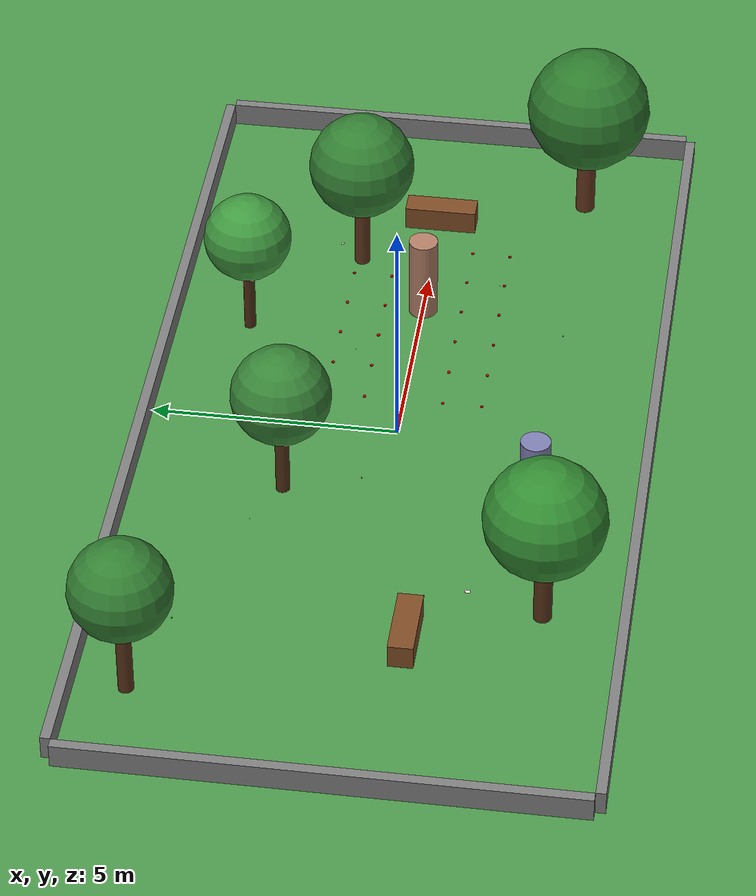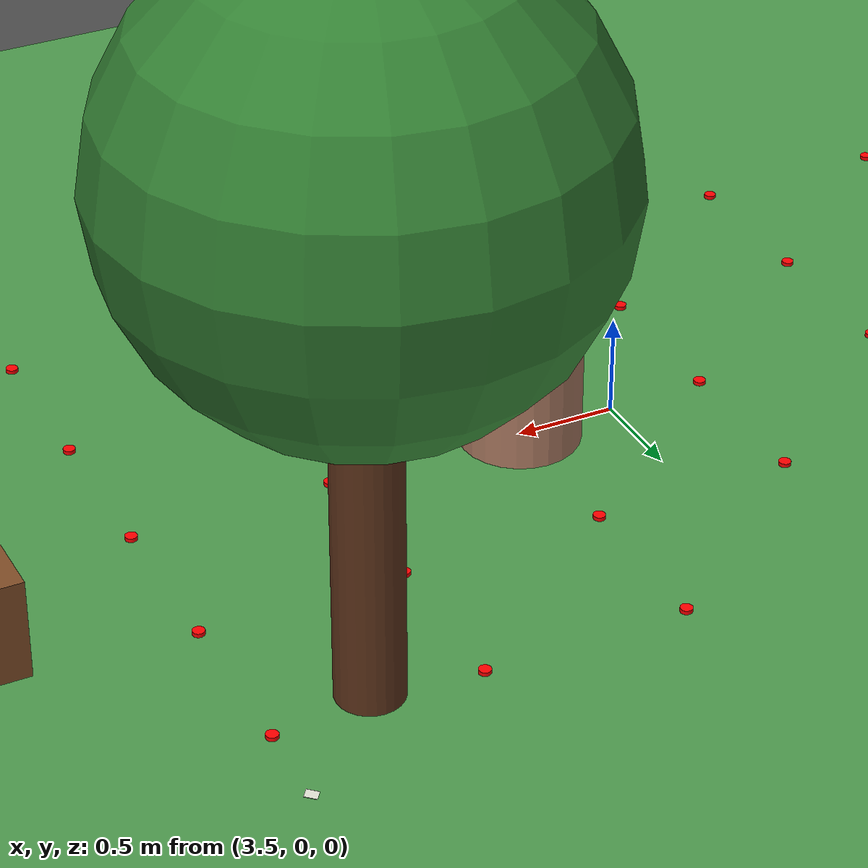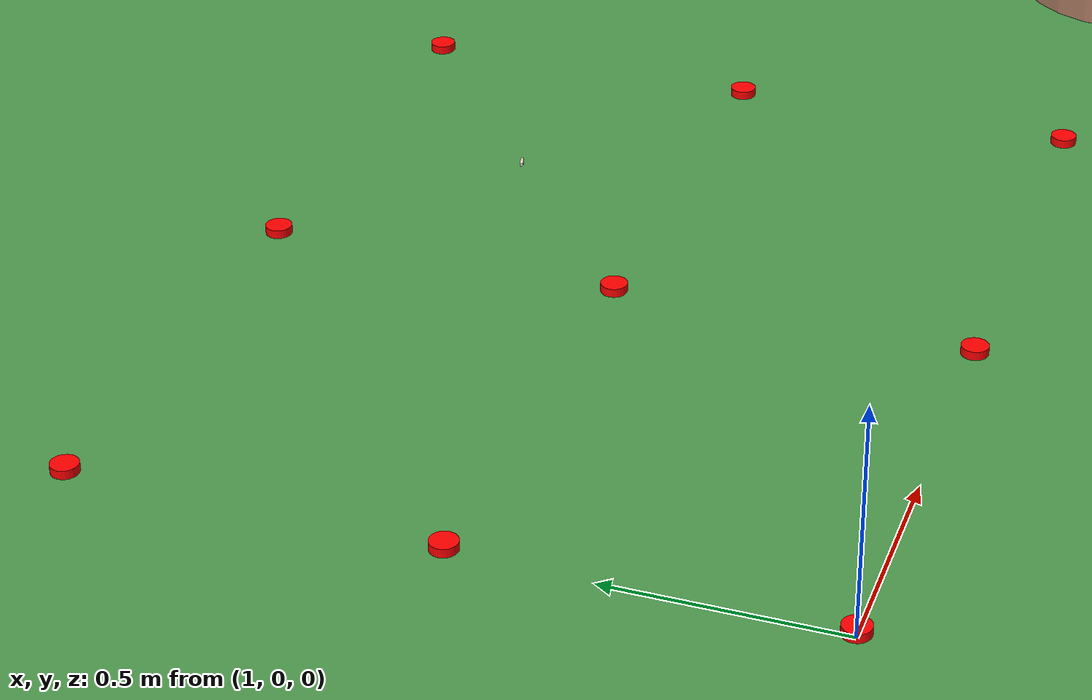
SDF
<?xml version="1.0" ?>
<sdf version="1.6">
  <world name="med_cim">
    <!-- Physics - slower for WSL2 stability -->
    <physics type="ode">
      <max_step_size>0.001</max_step_size>
      <real_time_factor>0.5</real_time_factor>
      <real_time_update_rate>1000</real_time_update_rate>
    </physics>

    <!-- Lighting -->
    <include>
      <uri>model://sun</uri>
    </include>

    <!-- Ground plane with grass texture -->
    <model name="ground_plane">
      <static>true</static>
      <link name="link">
        <collision name="collision">
          <geometry>
            <plane>
              <normal>0 0 1</normal>
              <size>20 10</size>
            </plane>
          </geometry>
          <surface>
            <friction>
              <ode>
                <mu>100</mu>
                <mu2>50</mu2>
              </ode>
            </friction>
          </surface>
        </collision>
        <visual name="visual">
          <cast_shadows>false</cast_shadows>
          <geometry>
            <plane>
              <normal>0 0 1</normal>
              <size>20 10</size>
            </plane>
          </geometry>
          <material>
            <ambient>0.2 0.5 0.2 1</ambient>
            <diffuse>0.3 0.6 0.3 1</diffuse>
            <specular>0.1 0.1 0.1 1</specular>
          </material>
        </visual>
      </link>
    </model>

    <!-- Boundary walls -->
    <model name="wall_north">
      <static>true</static>
      <pose>0 5.1 0.25 0 0 0</pose>
      <link name="link">
        <collision name="collision">
          <geometry>
            <box><size>20 0.2 0.5</size></box>
          </geometry>
        </collision>
        <visual name="visual">
          <geometry>
            <box><size>20 0.2 0.5</size></box>
          </geometry>
          <material>
            <ambient>0.5 0.5 0.5 1</ambient>
          </material>
        </visual>
      </link>
    </model>

    <model name="wall_south">
      <static>true</static>
      <pose>0 -5.1 0.25 0 0 0</pose>
      <link name="link">
        <collision name="collision">
          <geometry>
            <box><size>20 0.2 0.5</size></box>
          </geometry>
        </collision>
        <visual name="visual">
          <geometry>
            <box><size>20 0.2 0.5</size></box>
          </geometry>
          <material>
            <ambient>0.5 0.5 0.5 1</ambient>
          </material>
        </visual>
      </link>
    </model>

    <model name="wall_east">
      <static>true</static>
      <pose>10.1 0 0.25 0 0 0</pose>
      <link name="link">
        <collision name="collision">
          <geometry>
            <box><size>0.2 10 0.5</size></box>
          </geometry>
        </collision>
        <visual name="visual">
          <geometry>
            <box><size>0.2 10 0.5</size></box>
          </geometry>
          <material>
            <ambient>0.5 0.5 0.5 1</ambient>
          </material>
        </visual>
      </link>
    </model>

    <model name="wall_west">
      <static>true</static>
      <pose>-10.1 0 0.25 0 0 0</pose>
      <link name="link">
        <collision name="collision">
          <geometry>
            <box><size>0.2 10 0.5</size></box>
          </geometry>
        </collision>
        <visual name="visual">
          <geometry>
            <box><size>0.2 10 0.5</size></box>
          </geometry>
          <material>
            <ambient>0.5 0.5 0.5 1</ambient>
          </material>
        </visual>
      </link>
    </model>

    <!-- Litter objects: Cigarette butts -->
    <model name="cigarette_1">
      <static>true</static>
      <pose>2.5 1.2 0.005 0 1.57 0.3</pose>
      <link name="link">
        <collision name="collision">
          <geometry>
            <cylinder><radius>0.004</radius><length>0.03</length></cylinder>
          </geometry>
        </collision>
        <visual name="visual">
          <geometry>
            <cylinder><radius>0.004</radius><length>0.03</length></cylinder>
          </geometry>
          <material>
            <ambient>0.9 0.85 0.7 1</ambient>
            <diffuse>0.95 0.9 0.8 1</diffuse>
          </material>
        </visual>
      </link>
    </model>

    <model name="cigarette_2">
      <static>true</static>
      <pose>-3.0 2.5 0.005 0 1.57 1.2</pose>
      <link name="link">
        <collision name="collision">
          <geometry>
            <cylinder><radius>0.004</radius><length>0.03</length></cylinder>
          </geometry>
        </collision>
        <visual name="visual">
          <geometry>
            <cylinder><radius>0.004</radius><length>0.03</length></cylinder>
          </geometry>
          <material>
            <ambient>0.9 0.85 0.7 1</ambient>
          </material>
        </visual>
      </link>
    </model>

    <model name="cigarette_3">
      <static>true</static>
      <pose>5.0 -1.5 0.005 0 1.57 2.1</pose>
      <link name="link">
        <collision name="collision">
          <geometry>
            <cylinder><radius>0.004</radius><length>0.03</length></cylinder>
          </geometry>
        </collision>
        <visual name="visual">
          <geometry>
            <cylinder><radius>0.004</radius><length>0.03</length></cylinder>
          </geometry>
          <material>
            <ambient>0.9 0.85 0.7 1</ambient>
          </material>
        </visual>
      </link>
    </model>

    <!-- Litter objects: Paper pieces -->
    <model name="paper_1">
      <static>true</static>
      <pose>1.0 3.0 0.002 0 0 0.5</pose>
      <link name="link">
        <collision name="collision">
          <geometry>
            <box><size>0.08 0.06 0.002</size></box>
          </geometry>
        </collision>
        <visual name="visual">
          <geometry>
            <box><size>0.08 0.06 0.002</size></box>
          </geometry>
          <material>
            <ambient>0.95 0.95 0.95 1</ambient>
            <diffuse>1.0 1.0 1.0 1</diffuse>
          </material>
        </visual>
      </link>
    </model>

    <model name="paper_2">
      <static>true</static>
      <pose>-4.5 -2.0 0.002 0 0 1.8</pose>
      <link name="link">
        <collision name="collision">
          <geometry>
            <box><size>0.1 0.07 0.002</size></box>
          </geometry>
        </collision>
        <visual name="visual">
          <geometry>
            <box><size>0.1 0.07 0.002</size></box>
          </geometry>
          <material>
            <ambient>0.95 0.95 0.9 1</ambient>
          </material>
        </visual>
      </link>
    </model>

    <model name="paper_3">
      <static>true</static>
      <pose>6.0 2.0 0.002 0 0.1 2.5</pose>
      <link name="link">
        <collision name="collision">
          <geometry>
            <box><size>0.06 0.05 0.002</size></box>
          </geometry>
        </collision>
        <visual name="visual">
          <geometry>
            <box><size>0.06 0.05 0.002</size></box>
          </geometry>
          <material>
            <ambient>0.9 0.9 0.85 1</ambient>
          </material>
        </visual>
      </link>
    </model>

    <!-- Litter objects: Bottle caps -->
    <model name="bottle_cap_1">
      <static>true</static>
      <pose>-1.5 0.5 0.008 0 0 0</pose>
      <link name="link">
        <collision name="collision">
          <geometry>
            <cylinder><radius>0.015</radius><length>0.008</length></cylinder>
          </geometry>
        </collision>
        <visual name="visual">
          <geometry>
            <cylinder><radius>0.015</radius><length>0.008</length></cylinder>
          </geometry>
          <material>
            <ambient>0.8 0.1 0.1 1</ambient>
            <diffuse>1.0 0.2 0.2 1</diffuse>
          </material>
        </visual>
      </link>
    </model>

    <model name="bottle_cap_2">
      <static>true</static>
      <pose>3.5 -3.0 0.008 0 0 0</pose>
      <link name="link">
        <collision name="collision">
          <geometry>
            <cylinder><radius>0.015</radius><length>0.008</length></cylinder>
          </geometry>
        </collision>
        <visual name="visual">
          <geometry>
            <cylinder><radius>0.015</radius><length>0.008</length></cylinder>
          </geometry>
          <material>
            <ambient>0.1 0.1 0.8 1</ambient>
            <diffuse>0.2 0.2 1.0 1</diffuse>
          </material>
        </visual>
      </link>
    </model>

    <model name="bottle_cap_3">
      <static>true</static>
      <pose>-6.0 3.5 0.008 0 0 0</pose>
      <link name="link">
        <collision name="collision">
          <geometry>
            <cylinder><radius>0.015</radius><length>0.008</length></cylinder>
          </geometry>
        </collision>
        <visual name="visual">
          <geometry>
            <cylinder><radius>0.015</radius><length>0.008</length></cylinder>
          </geometry>
          <material>
            <ambient>0.1 0.6 0.1 1</ambient>
            <diffuse>0.2 0.8 0.2 1</diffuse>
          </material>
        </visual>
      </link>
    </model>

    <!-- Static human obstacles -->
    <model name="human_1">
      <static>true</static>
      <pose>4.0 0 0.9 0 0 0</pose>
      <link name="link">
        <collision name="collision">
          <geometry>
            <cylinder><radius>0.3</radius><length>1.8</length></cylinder>
          </geometry>
        </collision>
        <visual name="visual">
          <geometry>
            <cylinder><radius>0.3</radius><length>1.8</length></cylinder>
          </geometry>
          <material>
            <ambient>0.6 0.4 0.3 1</ambient>
            <diffuse>0.7 0.5 0.4 1</diffuse>
          </material>
        </visual>
      </link>
    </model>

    <model name="human_2">
      <static>true</static>
      <pose>-2.0 -3.0 0.9 0 0 0</pose>
      <link name="link">
        <collision name="collision">
          <geometry>
            <cylinder><radius>0.3</radius><length>1.8</length></cylinder>
          </geometry>
        </collision>
        <visual name="visual">
          <geometry>
            <cylinder><radius>0.3</radius><length>1.8</length></cylinder>
          </geometry>
          <material>
            <ambient>0.4 0.4 0.6 1</ambient>
            <diffuse>0.5 0.5 0.7 1</diffuse>
          </material>
        </visual>
      </link>
    </model>

    <!-- Bench -->
    <model name="bench_1">
      <static>true</static>
      <pose>7.0 0 0.25 0 0 1.57</pose>
      <link name="link">
        <collision name="collision">
          <geometry>
            <box><size>1.5 0.5 0.5</size></box>
          </geometry>
        </collision>
        <visual name="visual">
          <geometry>
            <box><size>1.5 0.5 0.5</size></box>
          </geometry>
          <material>
            <ambient>0.4 0.25 0.1 1</ambient>
            <diffuse>0.5 0.3 0.15 1</diffuse>
          </material>
        </visual>
      </link>
    </model>

    <!-- Trees -->
    <model name="tree_1">
      <static>true</static>
      <pose>-8.0 4.0 0 0 0 0</pose>
      <link name="trunk">
        <pose>0 0 1.0 0 0 0</pose>
        <collision name="collision">
          <geometry>
            <cylinder><radius>0.15</radius><length>2.0</length></cylinder>
          </geometry>
        </collision>
        <visual name="visual">
          <geometry>
            <cylinder><radius>0.15</radius><length>2.0</length></cylinder>
          </geometry>
          <material>
            <ambient>0.35 0.2 0.1 1</ambient>
          </material>
        </visual>
      </link>
      <link name="foliage">
        <pose>0 0 2.5 0 0 0</pose>
        <visual name="visual">
          <geometry>
            <sphere><radius>1.0</radius></sphere>
          </geometry>
          <material>
            <ambient>0.1 0.4 0.1 1</ambient>
            <diffuse>0.2 0.5 0.2 1</diffuse>
          </material>
        </visual>
      </link>
    </model>

    <model name="tree_2">
      <static>true</static>
      <pose>-5.0 -3.5 0 0 0 0</pose>
      <link name="trunk">
        <pose>0 0 1.0 0 0 0</pose>
        <collision name="collision">
          <geometry>
            <cylinder><radius>0.18</radius><length>2.0</length></cylinder>
          </geometry>
        </collision>
        <visual name="visual">
          <geometry>
            <cylinder><radius>0.18</radius><length>2.0</length></cylinder>
          </geometry>
          <material>
            <ambient>0.35 0.2 0.1 1</ambient>
          </material>
        </visual>
      </link>
      <link name="foliage">
        <pose>0 0 2.5 0 0 0</pose>
        <visual name="visual">
          <geometry>
            <sphere><radius>1.2</radius></sphere>
          </geometry>
          <material>
            <ambient>0.1 0.45 0.1 1</ambient>
            <diffuse>0.2 0.55 0.2 1</diffuse>
          </material>
        </visual>
      </link>
    </model>

    <model name="tree_3">
      <static>true</static>
      <pose>3.0 3.5 0 0 0 0</pose>
      <link name="trunk">
        <pose>0 0 1.0 0 0 0</pose>
        <collision name="collision">
          <geometry>
            <cylinder><radius>0.12</radius><length>2.0</length></cylinder>
          </geometry>
        </collision>
        <visual name="visual">
          <geometry>
            <cylinder><radius>0.12</radius><length>2.0</length></cylinder>
          </geometry>
          <material>
            <ambient>0.3 0.18 0.08 1</ambient>
          </material>
        </visual>
      </link>
      <link name="foliage">
        <pose>0 0 2.3 0 0 0</pose>
        <visual name="visual">
          <geometry>
            <sphere><radius>0.9</radius></sphere>
          </geometry>
          <material>
            <ambient>0.15 0.5 0.15 1</ambient>
            <diffuse>0.25 0.6 0.25 1</diffuse>
          </material>
        </visual>
      </link>
    </model>

    <model name="tree_4">
      <static>true</static>
      <pose>8.0 -3.0 0 0 0 0</pose>
      <link name="trunk">
        <pose>0 0 1.0 0 0 0</pose>
        <collision name="collision">
          <geometry>
            <cylinder><radius>0.2</radius><length>2.0</length></cylinder>
          </geometry>
        </collision>
        <visual name="visual">
          <geometry>
            <cylinder><radius>0.2</radius><length>2.0</length></cylinder>
          </geometry>
          <material>
            <ambient>0.4 0.22 0.12 1</ambient>
          </material>
        </visual>
      </link>
      <link name="foliage">
        <pose>0 0 2.6 0 0 0</pose>
        <visual name="visual">
          <geometry>
            <sphere><radius>1.3</radius></sphere>
          </geometry>
          <material>
            <ambient>0.08 0.38 0.08 1</ambient>
            <diffuse>0.18 0.48 0.18 1</diffuse>
          </material>
        </visual>
      </link>
    </model>

    <model name="tree_5">
      <static>true</static>
      <pose>-2.0 2.0 0 0 0 0</pose>
      <link name="trunk">
        <pose>0 0 1.0 0 0 0</pose>
        <collision name="collision">
          <geometry>
            <cylinder><radius>0.14</radius><length>2.0</length></cylinder>
          </geometry>
        </collision>
        <visual name="visual">
          <geometry>
            <cylinder><radius>0.14</radius><length>2.0</length></cylinder>
          </geometry>
          <material>
            <ambient>0.32 0.19 0.09 1</ambient>
          </material>
        </visual>
      </link>
      <link name="foliage">
        <pose>0 0 2.4 0 0 0</pose>
        <visual name="visual">
          <geometry>
            <sphere><radius>1.0</radius></sphere>
          </geometry>
          <material>
            <ambient>0.12 0.42 0.12 1</ambient>
            <diffuse>0.22 0.52 0.22 1</diffuse>
          </material>
        </visual>
      </link>
    </model>

    <model name="tree_6">
      <static>true</static>
      <pose>5.5 1.5 0 0 0 0</pose>
      <link name="trunk">
        <pose>0 0 1.0 0 0 0</pose>
        <collision name="collision">
          <geometry>
            <cylinder><radius>0.16</radius><length>2.0</length></cylinder>
          </geometry>
        </collision>
        <visual name="visual">
          <geometry>
            <cylinder><radius>0.16</radius><length>2.0</length></cylinder>
          </geometry>
          <material>
            <ambient>0.38 0.21 0.11 1</ambient>
          </material>
        </visual>
      </link>
      <link name="foliage">
        <pose>0 0 2.5 0 0 0</pose>
        <visual name="visual">
          <geometry>
            <sphere><radius>1.1</radius></sphere>
          </geometry>
          <material>
            <ambient>0.1 0.4 0.1 1</ambient>
            <diffuse>0.2 0.5 0.2 1</diffuse>
          </material>
        </visual>
      </link>
    </model>

    <!-- Second bench -->
    <model name="bench_2">
      <static>true</static>
      <pose>-6.0 -1.0 0.25 0 0 0</pose>
      <link name="link">
        <collision name="collision">
          <geometry>
            <box><size>1.5 0.5 0.5</size></box>
          </geometry>
        </collision>
        <visual name="visual">
          <geometry>
            <box><size>1.5 0.5 0.5</size></box>
          </geometry>
          <material>
            <ambient>0.4 0.25 0.1 1</ambient>
            <diffuse>0.5 0.3 0.15 1</diffuse>
          </material>
        </visual>
      </link>
    </model>

    <!-- ========== LITTER OBJECTS (30 BOTTLE CAPS - UNIFORM) ========== -->
    <!-- Grid: 5 rows x 6 columns, evenly distributed -->
    <!-- Coverage area: x=[0.5, 6.5], y=[-2.0, 2.0] -->

    <!-- Row 1 (y = -1.6) -->
    <model name="litter_01">
      <static>true</static>
      <pose>1.0 -1.6 0.02 0 0 0</pose>
      <link name="link">
        <visual name="visual">
          <geometry><cylinder><radius>0.03</radius><length>0.02</length></cylinder></geometry>
          <material>
            <ambient>0.9 0.0 0.0 1</ambient>
            <diffuse>1.0 0.0 0.0 1</diffuse>
            <specular>0.5 0.0 0.0 1</specular>
          </material>
        </visual>
        <collision name="collision">
          <geometry><cylinder><radius>0.03</radius><length>0.02</length></cylinder></geometry>
        </collision>
      </link>
    </model>

    <model name="litter_02">
      <static>true</static>
      <pose>2.0 -1.6 0.02 0 0 0</pose>
      <link name="link">
        <visual name="visual">
          <geometry><cylinder><radius>0.03</radius><length>0.02</length></cylinder></geometry>
          <material>
            <ambient>0.9 0.0 0.0 1</ambient>
            <diffuse>1.0 0.0 0.0 1</diffuse>
            <specular>0.5 0.0 0.0 1</specular>
          </material>
        </visual>
        <collision name="collision">
          <geometry><cylinder><radius>0.03</radius><length>0.02</length></cylinder></geometry>
        </collision>
      </link>
    </model>

    <model name="litter_03">
      <static>true</static>
      <pose>3.0 -1.6 0.02 0 0 0</pose>
      <link name="link">
        <visual name="visual">
          <geometry><cylinder><radius>0.03</radius><length>0.02</length></cylinder></geometry>
          <material>
            <ambient>0.9 0.0 0.0 1</ambient>
            <diffuse>1.0 0.0 0.0 1</diffuse>
            <specular>0.5 0.0 0.0 1</specular>
          </material>
        </visual>
        <collision name="collision">
          <geometry><cylinder><radius>0.03</radius><length>0.02</length></cylinder></geometry>
        </collision>
      </link>
    </model>

    <model name="litter_04">
      <static>true</static>
      <pose>4.0 -1.6 0.02 0 0 0</pose>
      <link name="link">
        <visual name="visual">
          <geometry><cylinder><radius>0.03</radius><length>0.02</length></cylinder></geometry>
          <material>
            <ambient>0.9 0.0 0.0 1</ambient>
            <diffuse>1.0 0.0 0.0 1</diffuse>
            <specular>0.5 0.0 0.0 1</specular>
          </material>
        </visual>
        <collision name="collision">
          <geometry><cylinder><radius>0.03</radius><length>0.02</length></cylinder></geometry>
        </collision>
      </link>
    </model>

    <model name="litter_05">
      <static>true</static>
      <pose>5.0 -1.6 0.02 0 0 0</pose>
      <link name="link">
        <visual name="visual">
          <geometry><cylinder><radius>0.03</radius><length>0.02</length></cylinder></geometry>
          <material>
            <ambient>0.9 0.0 0.0 1</ambient>
            <diffuse>1.0 0.0 0.0 1</diffuse>
            <specular>0.5 0.0 0.0 1</specular>
          </material>
        </visual>
        <collision name="collision">
          <geometry><cylinder><radius>0.03</radius><length>0.02</length></cylinder></geometry>
        </collision>
      </link>
    </model>

    <model name="litter_06">
      <static>true</static>
      <pose>6.0 -1.6 0.02 0 0 0</pose>
      <link name="link">
        <visual name="visual">
          <geometry><cylinder><radius>0.03</radius><length>0.02</length></cylinder></geometry>
          <material>
            <ambient>0.9 0.0 0.0 1</ambient>
            <diffuse>1.0 0.0 0.0 1</diffuse>
            <specular>0.5 0.0 0.0 1</specular>
          </material>
        </visual>
        <collision name="collision">
          <geometry><cylinder><radius>0.03</radius><length>0.02</length></cylinder></geometry>
        </collision>
      </link>
    </model>

    <!-- Row 2 (y = -0.8) -->
    <model name="litter_07">
      <static>true</static>
      <pose>1.0 -0.8 0.02 0 0 0</pose>
      <link name="link">
        <visual name="visual">
          <geometry><cylinder><radius>0.03</radius><length>0.02</length></cylinder></geometry>
          <material>
            <ambient>0.9 0.0 0.0 1</ambient>
            <diffuse>1.0 0.0 0.0 1</diffuse>
            <specular>0.5 0.0 0.0 1</specular>
          </material>
        </visual>
        <collision name="collision">
          <geometry><cylinder><radius>0.03</radius><length>0.02</length></cylinder></geometry>
        </collision>
      </link>
    </model>

    <model name="litter_08">
      <static>true</static>
      <pose>2.0 -0.8 0.02 0 0 0</pose>
      <link name="link">
        <visual name="visual">
          <geometry><cylinder><radius>0.03</radius><length>0.02</length></cylinder></geometry>
          <material>
            <ambient>0.9 0.0 0.0 1</ambient>
            <diffuse>1.0 0.0 0.0 1</diffuse>
            <specular>0.5 0.0 0.0 1</specular>
          </material>
        </visual>
        <collision name="collision">
          <geometry><cylinder><radius>0.03</radius><length>0.02</length></cylinder></geometry>
        </collision>
      </link>
    </model>

    <model name="litter_09">
      <static>true</static>
      <pose>3.0 -0.8 0.02 0 0 0</pose>
      <link name="link">
        <visual name="visual">
          <geometry><cylinder><radius>0.03</radius><length>0.02</length></cylinder></geometry>
          <material>
            <ambient>0.9 0.0 0.0 1</ambient>
            <diffuse>1.0 0.0 0.0 1</diffuse>
            <specular>0.5 0.0 0.0 1</specular>
          </material>
        </visual>
        <collision name="collision">
          <geometry><cylinder><radius>0.03</radius><length>0.02</length></cylinder></geometry>
        </collision>
      </link>
    </model>

    <model name="litter_10">
      <static>true</static>
      <pose>4.0 -0.8 0.02 0 0 0</pose>
      <link name="link">
        <visual name="visual">
          <geometry><cylinder><radius>0.03</radius><length>0.02</length></cylinder></geometry>
          <material>
            <ambient>0.9 0.0 0.0 1</ambient>
            <diffuse>1.0 0.0 0.0 1</diffuse>
            <specular>0.5 0.0 0.0 1</specular>
          </material>
        </visual>
        <collision name="collision">
          <geometry><cylinder><radius>0.03</radius><length>0.02</length></cylinder></geometry>
        </collision>
      </link>
    </model>

    <model name="litter_11">
      <static>true</static>
      <pose>5.0 -0.8 0.02 0 0 0</pose>
      <link name="link">
        <visual name="visual">
          <geometry><cylinder><radius>0.03</radius><length>0.02</length></cylinder></geometry>
          <material>
            <ambient>0.9 0.0 0.0 1</ambient>
            <diffuse>1.0 0.0 0.0 1</diffuse>
            <specular>0.5 0.0 0.0 1</specular>
          </material>
        </visual>
        <collision name="collision">
          <geometry><cylinder><radius>0.03</radius><length>0.02</length></cylinder></geometry>
        </collision>
      </link>
    </model>

    <model name="litter_12">
      <static>true</static>
      <pose>6.0 -0.8 0.02 0 0 0</pose>
      <link name="link">
        <visual name="visual">
          <geometry><cylinder><radius>0.03</radius><length>0.02</length></cylinder></geometry>
          <material>
            <ambient>0.9 0.0 0.0 1</ambient>
            <diffuse>1.0 0.0 0.0 1</diffuse>
            <specular>0.5 0.0 0.0 1</specular>
          </material>
        </visual>
        <collision name="collision">
          <geometry><cylinder><radius>0.03</radius><length>0.02</length></cylinder></geometry>
        </collision>
      </link>
    </model>

    <!-- Row 3 (y = 0.0) -->
    <model name="litter_13">
      <static>true</static>
      <pose>1.0 0.0 0.02 0 0 0</pose>
      <link name="link">
        <visual name="visual">
          <geometry><cylinder><radius>0.03</radius><length>0.02</length></cylinder></geometry>
          <material>
            <ambient>0.9 0.0 0.0 1</ambient>
            <diffuse>1.0 0.0 0.0 1</diffuse>
            <specular>0.5 0.0 0.0 1</specular>
          </material>
        </visual>
        <collision name="collision">
          <geometry><cylinder><radius>0.03</radius><length>0.02</length></cylinder></geometry>
        </collision>
      </link>
    </model>

    <model name="litter_14">
      <static>true</static>
      <pose>2.0 0.0 0.02 0 0 0</pose>
      <link name="link">
        <visual name="visual">
          <geometry><cylinder><radius>0.03</radius><length>0.02</length></cylinder></geometry>
          <material>
            <ambient>0.9 0.0 0.0 1</ambient>
            <diffuse>1.0 0.0 0.0 1</diffuse>
            <specular>0.5 0.0 0.0 1</specular>
          </material>
        </visual>
        <collision name="collision">
          <geometry><cylinder><radius>0.03</radius><length>0.02</length></cylinder></geometry>
        </collision>
      </link>
    </model>

    <model name="litter_15">
      <static>true</static>
      <pose>3.0 0.0 0.02 0 0 0</pose>
      <link name="link">
        <visual name="visual">
          <geometry><cylinder><radius>0.03</radius><length>0.02</length></cylinder></geometry>
          <material>
            <ambient>0.9 0.0 0.0 1</ambient>
            <diffuse>1.0 0.0 0.0 1</diffuse>
            <specular>0.5 0.0 0.0 1</specular>
          </material>
        </visual>
        <collision name="collision">
          <geometry><cylinder><radius>0.03</radius><length>0.02</length></cylinder></geometry>
        </collision>
      </link>
    </model>

    <model name="litter_16">
      <static>true</static>
      <pose>4.0 0.0 0.02 0 0 0</pose>
      <link name="link">
        <visual name="visual">
          <geometry><cylinder><radius>0.03</radius><length>0.02</length></cylinder></geometry>
          <material>
            <ambient>0.9 0.0 0.0 1</ambient>
            <diffuse>1.0 0.0 0.0 1</diffuse>
            <specular>0.5 0.0 0.0 1</specular>
          </material>
        </visual>
        <collision name="collision">
          <geometry><cylinder><radius>0.03</radius><length>0.02</length></cylinder></geometry>
        </collision>
      </link>
    </model>

    <model name="litter_17">
      <static>true</static>
      <pose>5.0 0.0 0.02 0 0 0</pose>
      <link name="link">
        <visual name="visual">
          <geometry><cylinder><radius>0.03</radius><length>0.02</length></cylinder></geometry>
          <material>
            <ambient>0.9 0.0 0.0 1</ambient>
            <diffuse>1.0 0.0 0.0 1</diffuse>
            <specular>0.5 0.0 0.0 1</specular>
          </material>
        </visual>
        <collision name="collision">
          <geometry><cylinder><radius>0.03</radius><length>0.02</length></cylinder></geometry>
        </collision>
      </link>
    </model>

    <model name="litter_18">
      <static>true</static>
      <pose>6.0 0.0 0.02 0 0 0</pose>
      <link name="link">
        <visual name="visual">
          <geometry><cylinder><radius>0.03</radius><length>0.02</length></cylinder></geometry>
          <material>
            <ambient>0.9 0.0 0.0 1</ambient>
            <diffuse>1.0 0.0 0.0 1</diffuse>
            <specular>0.5 0.0 0.0 1</specular>
          </material>
        </visual>
        <collision name="collision">
          <geometry><cylinder><radius>0.03</radius><length>0.02</length></cylinder></geometry>
        </collision>
      </link>
    </model>

    <!-- Row 4 (y = 0.8) -->
    <model name="litter_19">
      <static>true</static>
      <pose>1.0 0.8 0.02 0 0 0</pose>
      <link name="link">
        <visual name="visual">
          <geometry><cylinder><radius>0.03</radius><length>0.02</length></cylinder></geometry>
          <material>
            <ambient>0.9 0.0 0.0 1</ambient>
            <diffuse>1.0 0.0 0.0 1</diffuse>
            <specular>0.5 0.0 0.0 1</specular>
          </material>
        </visual>
        <collision name="collision">
          <geometry><cylinder><radius>0.03</radius><length>0.02</length></cylinder></geometry>
        </collision>
      </link>
    </model>

    <model name="litter_20">
      <static>true</static>
      <pose>2.0 0.8 0.02 0 0 0</pose>
      <link name="link">
        <visual name="visual">
          <geometry><cylinder><radius>0.03</radius><length>0.02</length></cylinder></geometry>
          <material>
            <ambient>0.9 0.0 0.0 1</ambient>
            <diffuse>1.0 0.0 0.0 1</diffuse>
            <specular>0.5 0.0 0.0 1</specular>
          </material>
        </visual>
        <collision name="collision">
          <geometry><cylinder><radius>0.03</radius><length>0.02</length></cylinder></geometry>
        </collision>
      </link>
    </model>

    <model name="litter_21">
      <static>true</static>
      <pose>3.0 0.8 0.02 0 0 0</pose>
      <link name="link">
        <visual name="visual">
          <geometry><cylinder><radius>0.03</radius><length>0.02</length></cylinder></geometry>
          <material>
            <ambient>0.9 0.0 0.0 1</ambient>
            <diffuse>1.0 0.0 0.0 1</diffuse>
            <specular>0.5 0.0 0.0 1</specular>
          </material>
        </visual>
        <collision name="collision">
          <geometry><cylinder><radius>0.03</radius><length>0.02</length></cylinder></geometry>
        </collision>
      </link>
    </model>

    <model name="litter_22">
      <static>true</static>
      <pose>4.0 0.8 0.02 0 0 0</pose>
      <link name="link">
        <visual name="visual">
          <geometry><cylinder><radius>0.03</radius><length>0.02</length></cylinder></geometry>
          <material>
            <ambient>0.9 0.0 0.0 1</ambient>
            <diffuse>1.0 0.0 0.0 1</diffuse>
            <specular>0.5 0.0 0.0 1</specular>
          </material>
        </visual>
        <collision name="collision">
          <geometry><cylinder><radius>0.03</radius><length>0.02</length></cylinder></geometry>
        </collision>
      </link>
    </model>

    <model name="litter_23">
      <static>true</static>
      <pose>5.0 0.8 0.02 0 0 0</pose>
      <link name="link">
        <visual name="visual">
          <geometry><cylinder><radius>0.03</radius><length>0.02</length></cylinder></geometry>
          <material>
            <ambient>0.9 0.0 0.0 1</ambient>
            <diffuse>1.0 0.0 0.0 1</diffuse>
            <specular>0.5 0.0 0.0 1</specular>
          </material>
        </visual>
        <collision name="collision">
          <geometry><cylinder><radius>0.03</radius><length>0.02</length></cylinder></geometry>
        </collision>
      </link>
    </model>

    <model name="litter_24">
      <static>true</static>
      <pose>6.0 0.8 0.02 0 0 0</pose>
      <link name="link">
        <visual name="visual">
          <geometry><cylinder><radius>0.03</radius><length>0.02</length></cylinder></geometry>
          <material>
            <ambient>0.9 0.0 0.0 1</ambient>
            <diffuse>1.0 0.0 0.0 1</diffuse>
            <specular>0.5 0.0 0.0 1</specular>
          </material>
        </visual>
        <collision name="collision">
          <geometry><cylinder><radius>0.03</radius><length>0.02</length></cylinder></geometry>
        </collision>
      </link>
    </model>

    <!-- Row 5 (y = 1.6) -->
    <model name="litter_25">
      <static>true</static>
      <pose>1.0 1.6 0.02 0 0 0</pose>
      <link name="link">
        <visual name="visual">
          <geometry><cylinder><radius>0.03</radius><length>0.02</length></cylinder></geometry>
          <material>
            <ambient>0.9 0.0 0.0 1</ambient>
            <diffuse>1.0 0.0 0.0 1</diffuse>
            <specular>0.5 0.0 0.0 1</specular>
          </material>
        </visual>
        <collision name="collision">
          <geometry><cylinder><radius>0.03</radius><length>0.02</length></cylinder></geometry>
        </collision>
      </link>
    </model>

    <model name="litter_26">
      <static>true</static>
      <pose>2.0 1.6 0.02 0 0 0</pose>
      <link name="link">
        <visual name="visual">
          <geometry><cylinder><radius>0.03</radius><length>0.02</length></cylinder></geometry>
          <material>
            <ambient>0.9 0.0 0.0 1</ambient>
            <diffuse>1.0 0.0 0.0 1</diffuse>
            <specular>0.5 0.0 0.0 1</specular>
          </material>
        </visual>
        <collision name="collision">
          <geometry><cylinder><radius>0.03</radius><length>0.02</length></cylinder></geometry>
        </collision>
      </link>
    </model>

    <model name="litter_27">
      <static>true</static>
      <pose>3.0 1.6 0.02 0 0 0</pose>
      <link name="link">
        <visual name="visual">
          <geometry><cylinder><radius>0.03</radius><length>0.02</length></cylinder></geometry>
          <material>
            <ambient>0.9 0.0 0.0 1</ambient>
            <diffuse>1.0 0.0 0.0 1</diffuse>
            <specular>0.5 0.0 0.0 1</specular>
          </material>
        </visual>
        <collision name="collision">
          <geometry><cylinder><radius>0.03</radius><length>0.02</length></cylinder></geometry>
        </collision>
      </link>
    </model>

    <model name="litter_28">
      <static>true</static>
      <pose>4.0 1.6 0.02 0 0 0</pose>
      <link name="link">
        <visual name="visual">
          <geometry><cylinder><radius>0.03</radius><length>0.02</length></cylinder></geometry>
          <material>
            <ambient>0.9 0.0 0.0 1</ambient>
            <diffuse>1.0 0.0 0.0 1</diffuse>
            <specular>0.5 0.0 0.0 1</specular>
          </material>
        </visual>
        <collision name="collision">
          <geometry><cylinder><radius>0.03</radius><length>0.02</length></cylinder></geometry>
        </collision>
      </link>
    </model>

    <model name="litter_29">
      <static>true</static>
      <pose>5.0 1.6 0.02 0 0 0</pose>
      <link name="link">
        <visual name="visual">
          <geometry><cylinder><radius>0.03</radius><length>0.02</length></cylinder></geometry>
          <material>
            <ambient>0.9 0.0 0.0 1</ambient>
            <diffuse>1.0 0.0 0.0 1</diffuse>
            <specular>0.5 0.0 0.0 1</specular>
          </material>
        </visual>
        <collision name="collision">
          <geometry><cylinder><radius>0.03</radius><length>0.02</length></cylinder></geometry>
        </collision>
      </link>
    </model>

    <model name="litter_30">
      <static>true</static>
      <pose>6.0 1.6 0.02 0 0 0</pose>
      <link name="link">
        <visual name="visual">
          <geometry><cylinder><radius>0.03</radius><length>0.02</length></cylinder></geometry>
          <material>
            <ambient>0.9 0.0 0.0 1</ambient>
            <diffuse>1.0 0.0 0.0 1</diffuse>
            <specular>0.5 0.0 0.0 1</specular>
          </material>
        </visual>
        <collision name="collision">
          <geometry><cylinder><radius>0.03</radius><length>0.02</length></cylinder></geometry>
        </collision>
      </link>
    </model>

  </world>
</sdf>
